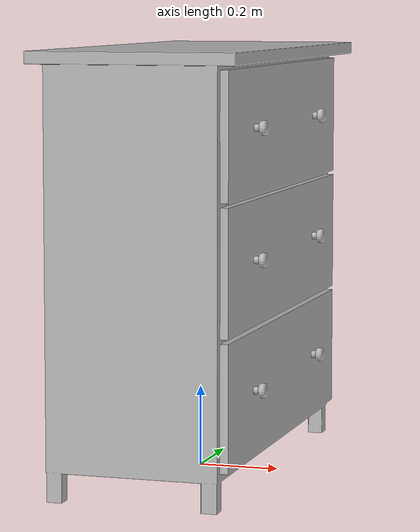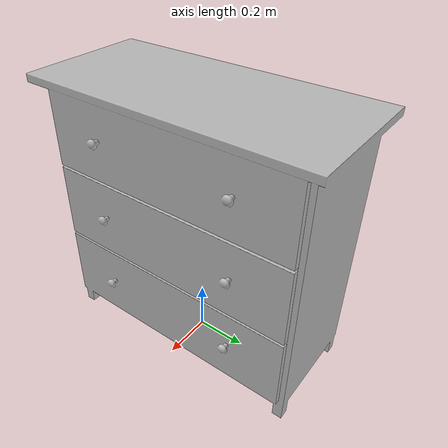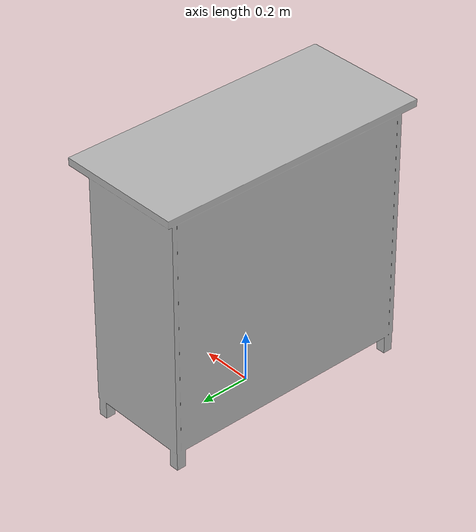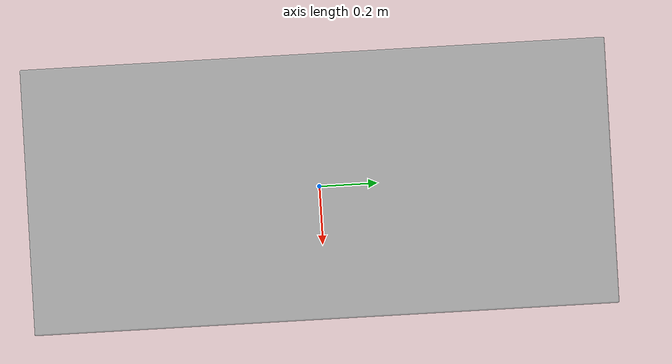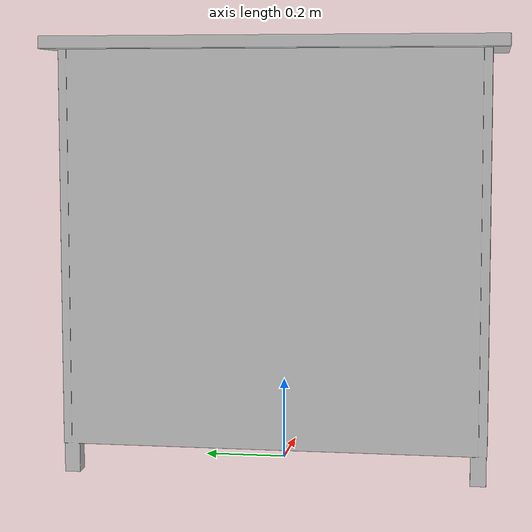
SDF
<?xml version='1.0'?>
<sdf version='1.4'>
  <model name='140'>
    <pose>0 0 0 0 0 0</pose>
    <static>true</static>
    <link name='link'>
      <collision name='collision'>
        <pose>0 0 0 0 0 0</pose>
        <geometry>
          <box>
            <size>0.500507 1.1 2</size>
          </box>
        </geometry>
      </collision>
      <visual name='visual'>
        <pose>0 0 0 0 0 0</pose>
        <geometry>
          <mesh><uri>model://140/140.dae</uri></mesh>
        </geometry>
      </visual>
    </link>
  </model>
</sdf>
